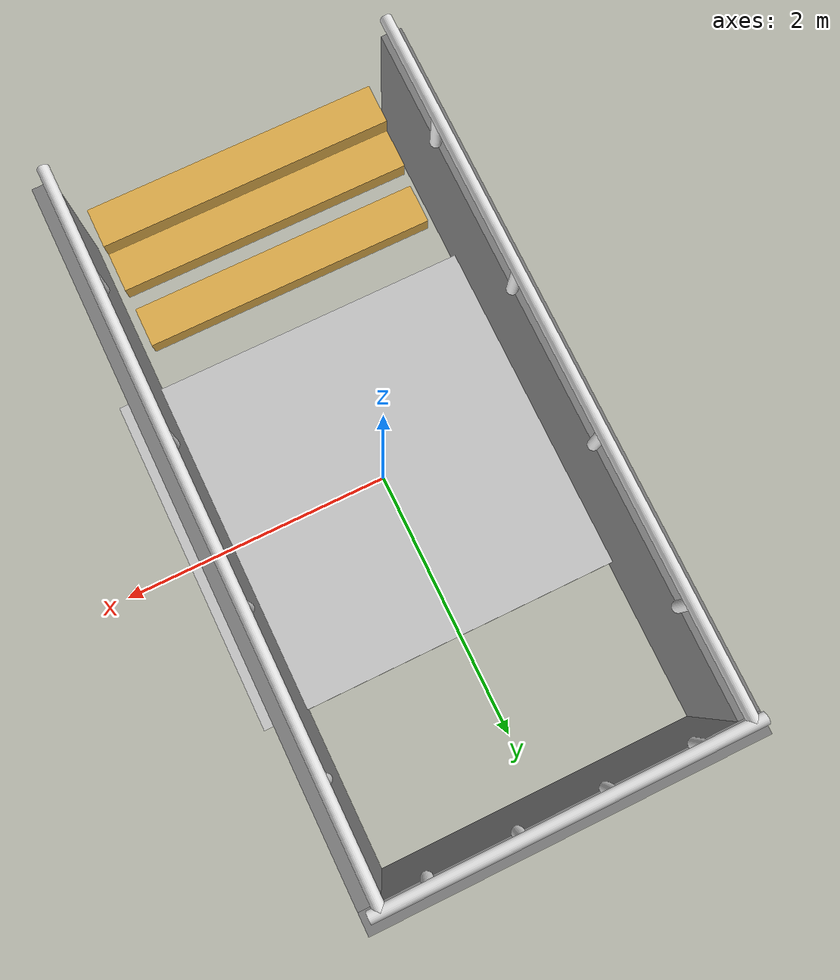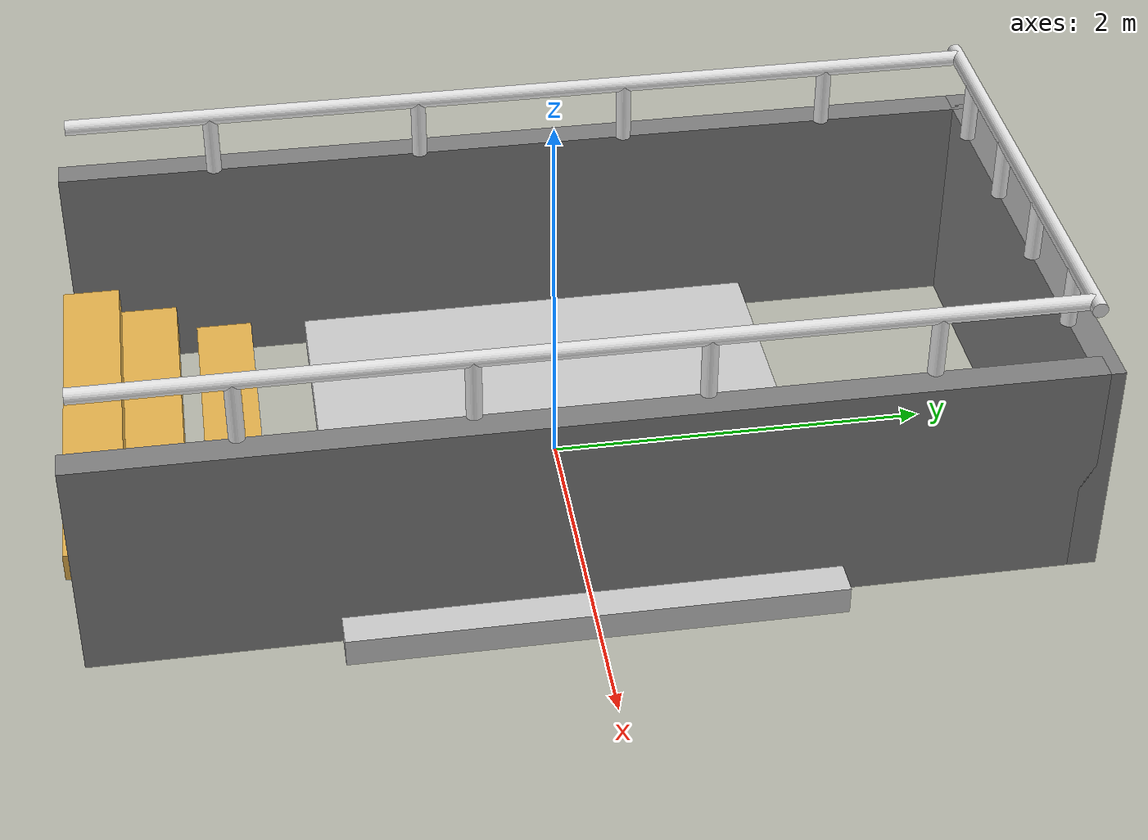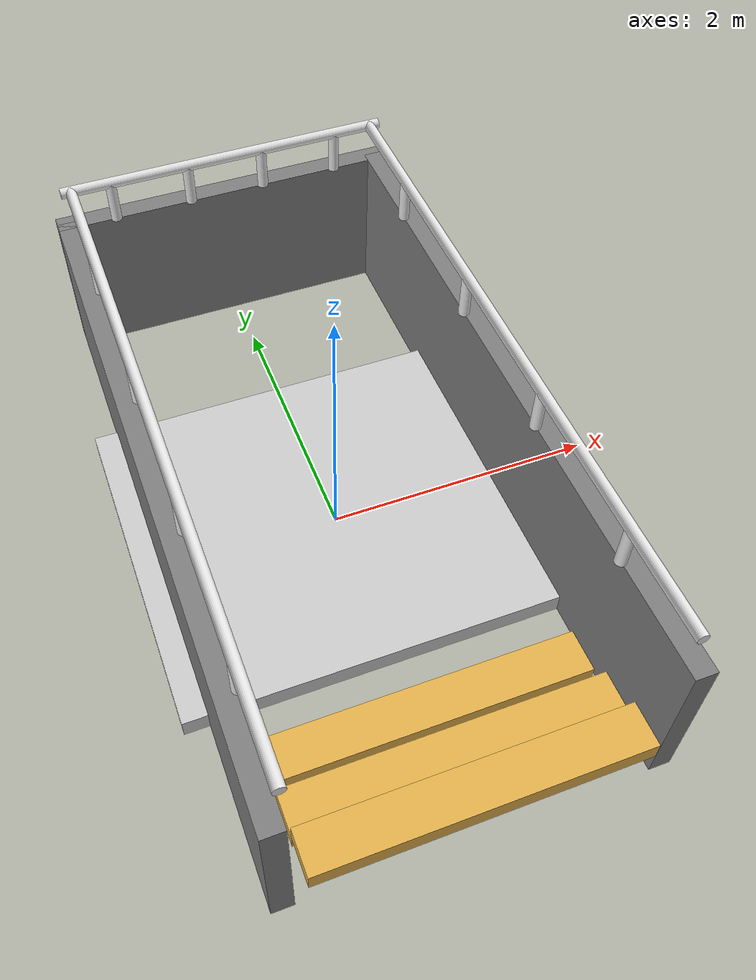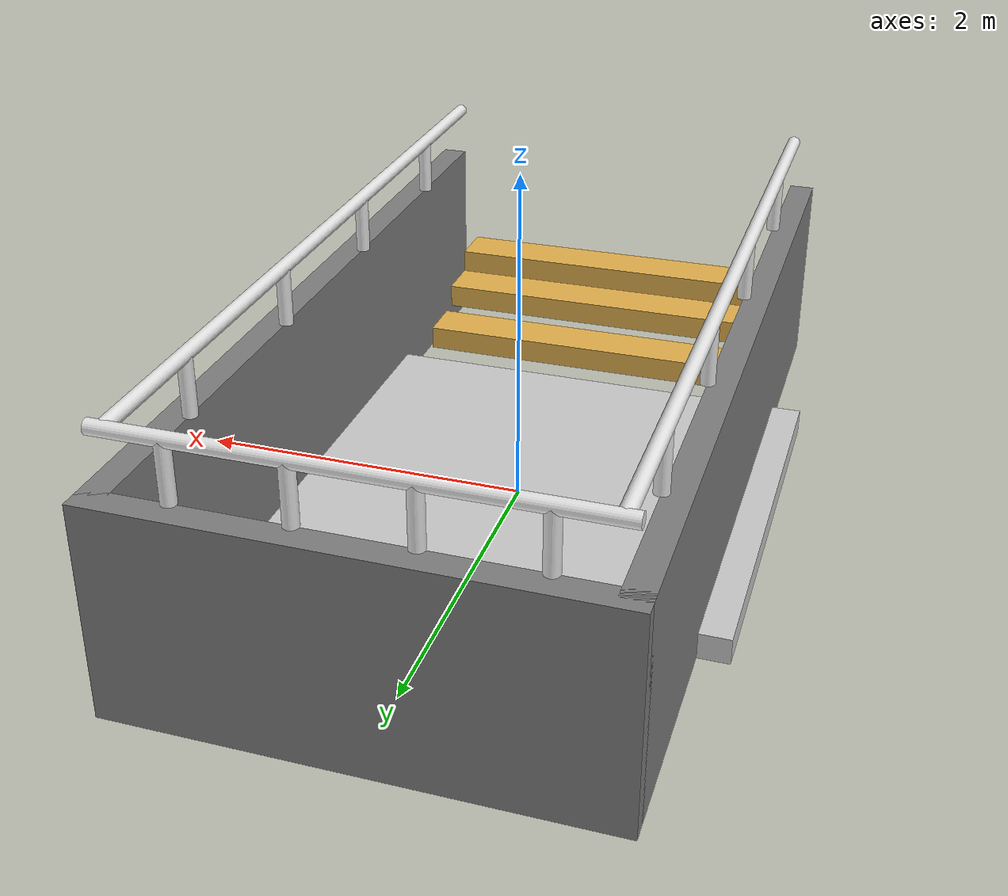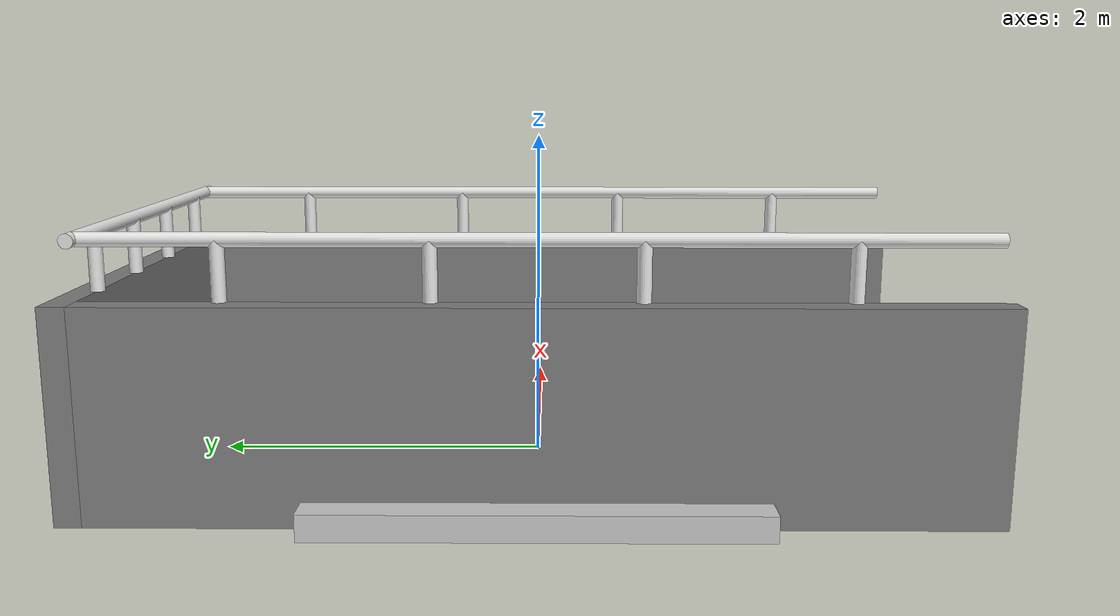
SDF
<?xml version="1.0" ?>
<sdf version="1.6">
  <model name="subway_entrance_template">
    <static>true</static>

    <!-- 템플릿은 원점(0,0,0)에 배치 -->
    <pose>0 0 0 0 0 0</pose>

    <link name="entrance_link">

      <!-- ================= 바닥 플랫폼 ================= -->
      <visual name="platform_visual">
        <pose>0 0 0.075 0 0 0</pose>
        <geometry>
          <box>
            <size>3.0 2.5 0.15</size>
          </box>
        </geometry>
        <material>
          <ambient>0.7 0.7 0.7 1</ambient>
          <diffuse>0.8 0.8 0.8 1</diffuse>
          <specular>0.1 0.1 0.1 1</specular>
        </material>
      </visual>

      <collision name="platform_collision">
        <pose>0 0 0.075 0 0 0</pose>
        <geometry>
          <box>
            <size>3.0 2.5 0.15</size>
          </box>
        </geometry>
      </collision>

      <!-- ================= 계단 3개 (간소화) ================= -->
      <!-- 계단 1 -->
      <visual name="step_1">
        <pose>0 -2.4 0.45 0 0 0</pose>
        <geometry>
          <box>
            <size>2.2 0.3 0.15</size>
          </box>
        </geometry>
        <material>
          <ambient>0.9 0.7 0.3 1</ambient>
          <diffuse>0.9 0.7 0.3 1</diffuse>
          <specular>0.2 0.2 0.2 1</specular>
        </material>
      </visual>

      <!-- 계단 2 -->
      <visual name="step_2">
        <pose>0 -2.1 0.3 0 0 0</pose>
        <geometry>
          <box>
            <size>2.2 0.3 0.15</size>
          </box>
        </geometry>
        <material>
          <ambient>0.9 0.7 0.3 1</ambient>
          <diffuse>0.9 0.7 0.3 1</diffuse>
        </material>
      </visual>

      <!-- 계단 3 -->
      <visual name="step_3">
        <pose>0 -1.7 0.15 0 0 0</pose>
        <geometry>
          <box>
            <size>2.2 0.3 0.15</size>
          </box>
        </geometry>
        <material>
          <ambient>0.9 0.7 0.3 1</ambient>
          <diffuse>0.9 0.7 0.3 1</diffuse>
        </material>
      </visual>

      <!-- ================= back 벽 ================= -->
      <visual name="back_wall">
        <pose>0 2.5 0.6 0 0 0</pose>
        <geometry>
          <box>
            <size>2.65 0.15 1.2</size>
          </box>
        </geometry>
        <material>
          <ambient>0.4 0.4 0.4 1</ambient>
          <diffuse>0.5 0.5 0.5 1</diffuse>
          <specular>0.05 0.05 0.05 1</specular>
        </material>
      </visual>

      <collision name="back_wall_collision">
        <pose>0 1.175 0.6 0 0 0</pose>
        <geometry>
          <box>
            <size>2.65 0.15 1.2</size>
          </box>
        </geometry>
      </collision>

      <!-- ================= 좌측 벽 ================= -->
      <visual name="left_wall">
        <pose>-1.25 0 0.6 0 0 0</pose>
        <geometry>
          <box>
            <size>0.15 5 1.2</size>
          </box>
        </geometry>
        <material>
          <ambient>0.4 0.4 0.4 1</ambient>
          <diffuse>0.5 0.5 0.5 1</diffuse>
          <specular>0.05 0.05 0.05 1</specular>
        </material>
      </visual>

      <collision name="left_wall_collision">
        <pose>-1.25 0 0.6 0 0 0</pose>
        <geometry>
          <box>
            <size>0.15 2.5 1.2</size>
          </box>
        </geometry>
      </collision>

      <!-- ================= 우측 벽 ================= -->
      <visual name="right_wall">
        <pose>1.25 0 0.6 0 0 0</pose>
        <geometry>
          <box>
            <size>0.15 5 1.2</size>
          </box>
        </geometry>
        <material>
          <ambient>0.4 0.4 0.4 1</ambient>
          <diffuse>0.5 0.5 0.5 1</diffuse>
          <specular>0.05 0.05 0.05 1</specular>
        </material>
      </visual>

      <collision name="right_wall_collision">
        <pose>1.25 0 0.6 0 0 0</pose>
        <geometry>
          <box>
            <size>0.15 5 1.2</size>
          </box>
        </geometry>
      </collision>

      <!-- ================= 수직 기둥 12개 ================= -->
      <!-- 뒷벽 기둥 4개 -->
      <visual name="post_back_1">
        <pose>-0.88 2.425 1.365 0 0 0</pose>
        <geometry>
          <cylinder>
            <radius>0.04</radius>
            <length>0.33</length>
          </cylinder>
        </geometry>
        <material>
          <ambient>0.8 0.8 0.8 1</ambient>
          <diffuse>0.9 0.9 0.9 1</diffuse>
          <specular>0.5 0.5 0.5 1</specular>
        </material>
      </visual>

      <visual name="post_back_2">
        <pose>-0.29 2.425 1.365 0 0 0</pose>
        <geometry>
          <cylinder>
            <radius>0.04</radius>
            <length>0.33</length>
          </cylinder>
        </geometry>
        <material>
          <ambient>0.8 0.8 0.8 1</ambient>
          <diffuse>0.9 0.9 0.9 1</diffuse>
          <specular>0.5 0.5 0.5 1</specular>
        </material>
      </visual>

      <visual name="post_back_3">
        <pose>0.29 2.425 1.365 0 0 0</pose>
        <geometry>
          <cylinder>
            <radius>0.04</radius>
            <length>0.33</length>
          </cylinder>
        </geometry>
        <material>
          <ambient>0.8 0.8 0.8 1</ambient>
          <diffuse>0.9 0.9 0.9 1</diffuse>
          <specular>0.5 0.5 0.5 1</specular>
        </material>
      </visual>

      <visual name="post_back_4">
        <pose>0.88 2.425 1.365 0 0 0</pose>
        <geometry>
          <cylinder>
            <radius>0.04</radius>
            <length>0.33</length>
          </cylinder>
        </geometry>
        <material>
          <ambient>0.8 0.8 0.8 1</ambient>
          <diffuse>0.9 0.9 0.9 1</diffuse>
          <specular>0.5 0.5 0.5 1</specular>
        </material>
      </visual>

      <!-- 좌측벽 기둥 4개 -->
      <visual name="post_left_1">
        <pose>-1.175 1.67 1.365 0 0 0</pose>
        <geometry>
          <cylinder>
            <radius>0.04</radius>
            <length>0.33</length>
          </cylinder>
        </geometry>
        <material>
          <ambient>0.8 0.8 0.8 1</ambient>
          <diffuse>0.9 0.9 0.9 1</diffuse>
          <specular>0.5 0.5 0.5 1</specular>
        </material>
      </visual>

      <visual name="post_left_2">
        <pose>-1.175 0.56 1.365 0 0 0</pose>
        <geometry>
          <cylinder>
            <radius>0.04</radius>
            <length>0.33</length>
          </cylinder>
        </geometry>
        <material>
          <ambient>0.8 0.8 0.8 1</ambient>
          <diffuse>0.9 0.9 0.9 1</diffuse>
          <specular>0.5 0.5 0.5 1</specular>
        </material>
      </visual>

      <visual name="post_left_3">
        <pose>-1.175 -0.56 1.365 0 0 0</pose>
        <geometry>
          <cylinder>
            <radius>0.04</radius>
            <length>0.33</length>
          </cylinder>
        </geometry>
        <material>
          <ambient>0.8 0.8 0.8 1</ambient>
          <diffuse>0.9 0.9 0.9 1</diffuse>
          <specular>0.5 0.5 0.5 1</specular>
        </material>
      </visual>

      <visual name="post_left_4">
        <pose>-1.175 -1.67 1.365 0 0 0</pose>
        <geometry>
          <cylinder>
            <radius>0.04</radius>
            <length>0.33</length>
          </cylinder>
        </geometry>
        <material>
          <ambient>0.8 0.8 0.8 1</ambient>
          <diffuse>0.9 0.9 0.9 1</diffuse>
          <specular>0.5 0.5 0.5 1</specular>
        </material>
      </visual>

      <!-- 우측벽 기둥 4개 -->
      <visual name="post_right_1">
        <pose>1.175 1.67 1.365 0 0 0</pose>
        <geometry>
          <cylinder>
            <radius>0.04</radius>
            <length>0.33</length>
          </cylinder>
        </geometry>
        <material>
          <ambient>0.8 0.8 0.8 1</ambient>
          <diffuse>0.9 0.9 0.9 1</diffuse>
          <specular>0.5 0.5 0.5 1</specular>
        </material>
      </visual>

      <visual name="post_right_2">
        <pose>1.175 0.56 1.365 0 0 0</pose>
        <geometry>
          <cylinder>
            <radius>0.04</radius>
            <length>0.33</length>
          </cylinder>
        </geometry>
        <material>
          <ambient>0.8 0.8 0.8 1</ambient>
          <diffuse>0.9 0.9 0.9 1</diffuse>
          <specular>0.5 0.5 0.5 1</specular>
        </material>
      </visual>

      <visual name="post_right_3">
        <pose>1.175 -0.56 1.365 0 0 0</pose>
        <geometry>
          <cylinder>
            <radius>0.04</radius>
            <length>0.33</length>
          </cylinder>
        </geometry>
        <material>
          <ambient>0.8 0.8 0.8 1</ambient>
          <diffuse>0.9 0.9 0.9 1</diffuse>
          <specular>0.5 0.5 0.5 1</specular>
        </material>
      </visual>

      <visual name="post_right_4">
        <pose>1.175 -1.67 1.365 0 0 0</pose>
        <geometry>
          <cylinder>
            <radius>0.04</radius>
            <length>0.33</length>
          </cylinder>
        </geometry>
        <material>
          <ambient>0.8 0.8 0.8 1</ambient>
          <diffuse>0.9 0.9 0.9 1</diffuse>
          <specular>0.5 0.5 0.5 1</specular>
        </material>
      </visual>

      <!-- ================= 수평 난간 ================= -->
      <!-- 뒷벽 난간 -->
      <visual name="handrail_back">
        <pose>0 2.425 1.53 0 1.5708 0</pose>
        <geometry>
          <cylinder>
            <radius>0.04</radius>
            <length>2.5</length>
          </cylinder>
        </geometry>
        <material>
          <ambient>0.8 0.8 0.8 1</ambient>
          <diffuse>0.9 0.9 0.9 1</diffuse>
          <specular>0.5 0.5 0.5 1</specular>
        </material>
      </visual>

      <!-- 좌측 난간 -->
      <visual name="handrail_left">
        <pose>-1.175 0 1.53 1.5708 0 0</pose>
        <geometry>
          <cylinder>
            <radius>0.04</radius>
            <length>4.85</length>
          </cylinder>
        </geometry>
        <material>
          <ambient>0.8 0.8 0.8 1</ambient>
          <diffuse>0.9 0.9 0.9 1</diffuse>
          <specular>0.5 0.5 0.5 1</specular>
        </material>
      </visual>

      <!-- 우측 난간 -->
      <visual name="handrail_right">
        <pose>1.175 0 1.53 1.5708 0 0</pose>
        <geometry>
          <cylinder>
            <radius>0.04</radius>
            <length>4.85</length>
          </cylinder>
        </geometry>
        <material>
          <ambient>0.8 0.8 0.8 1</ambient>
          <diffuse>0.9 0.9 0.9 1</diffuse>
          <specular>0.5 0.5 0.5 1</specular>
        </material>
      </visual>

    </link>
  </model>
</sdf>
